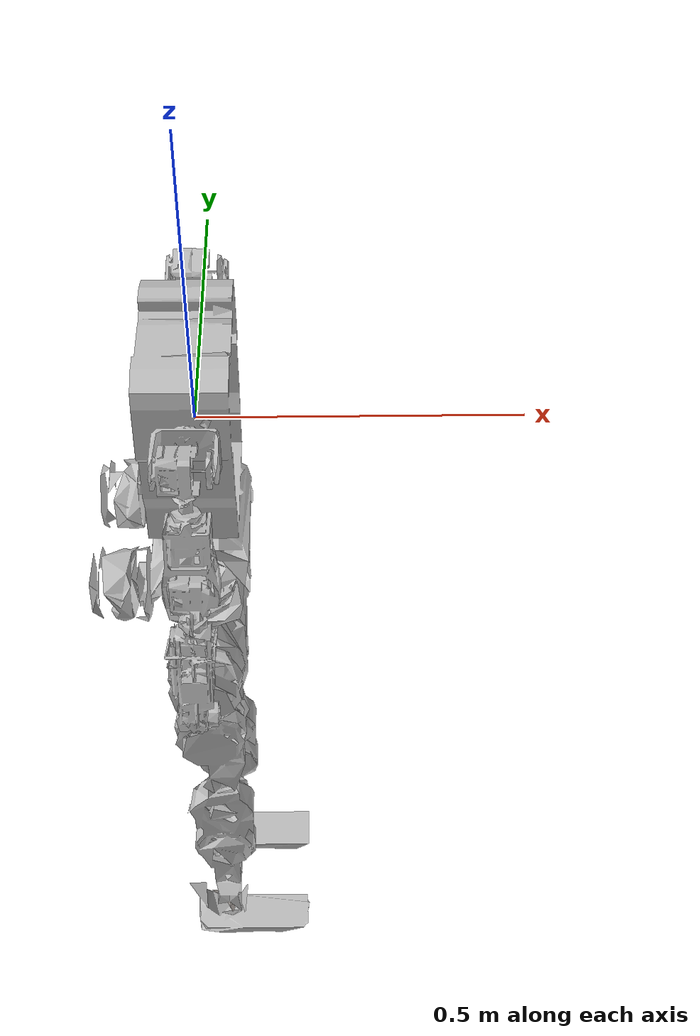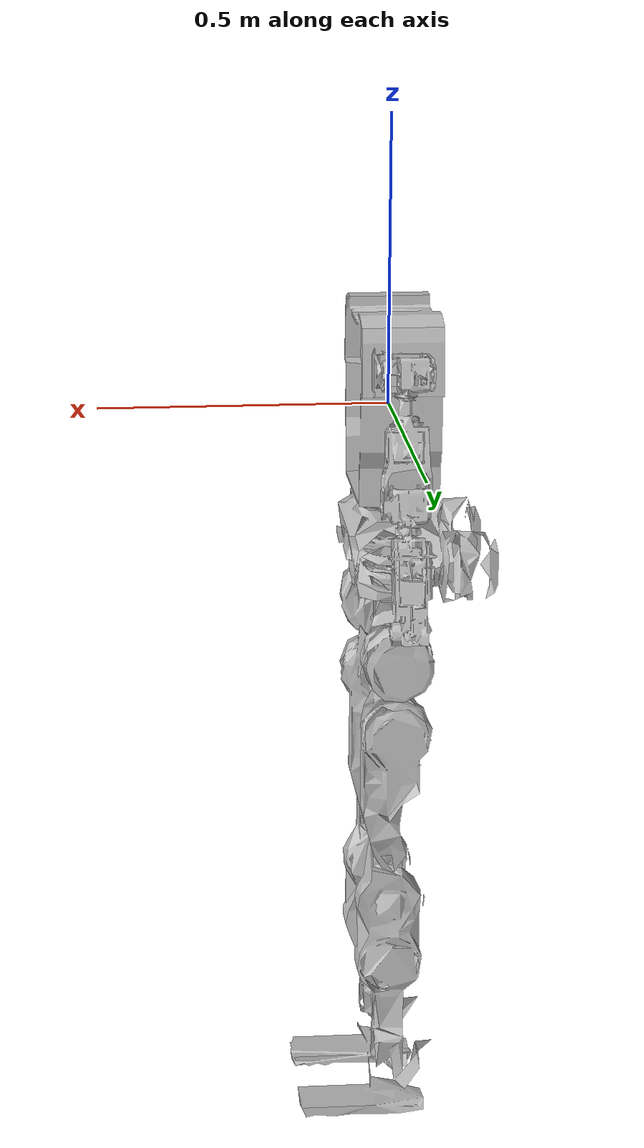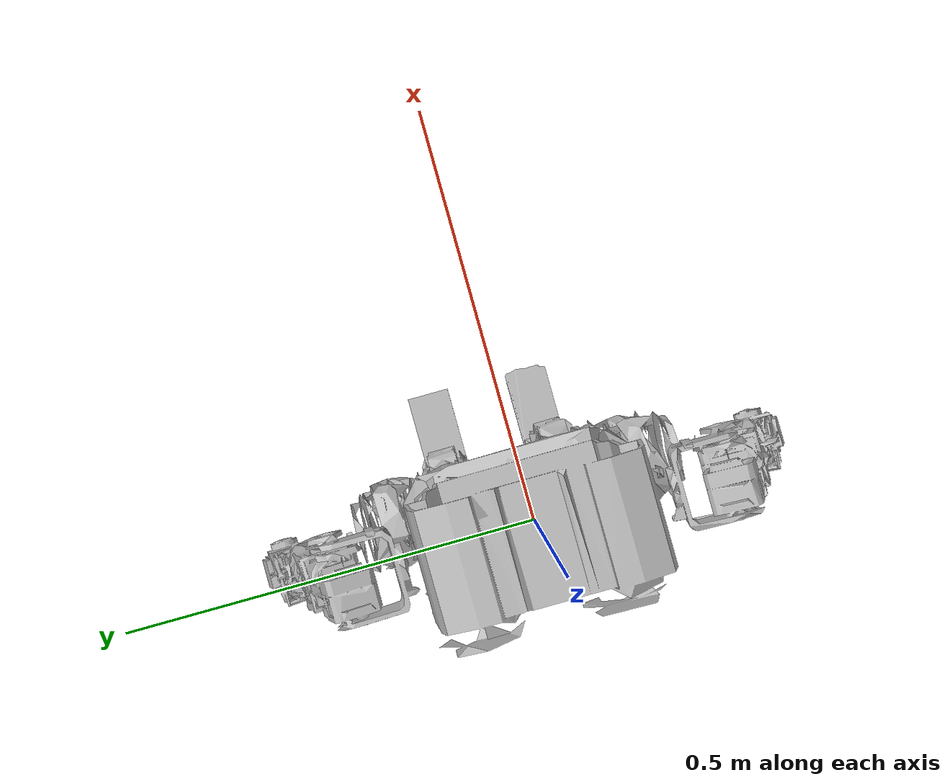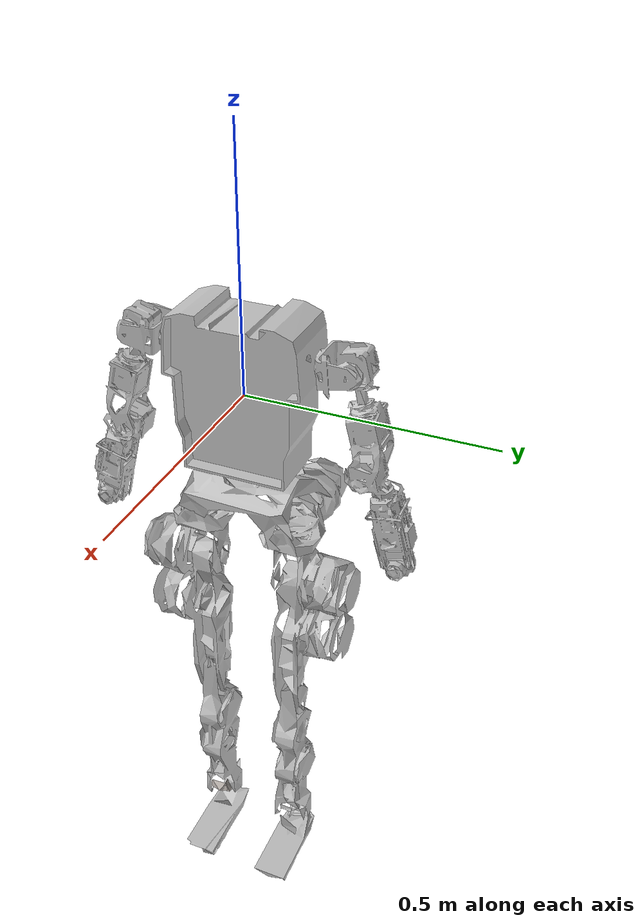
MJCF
<mujoco model="urdf_a1">
    <compiler angle="radian" />
    <size njmax="500" nconmax="100" />
    <asset>
        <mesh name="base_link" file="base_link.STL" />
        <mesh name="left_hip_roll_link" file="left_hip_roll_link.STL" />
        <mesh name="left_hip_yaw_link" file="left_hip_yaw_link.STL" />
        <mesh name="left_hip_pitch_link" file="left_hip_pitch_link.STL" />
        <mesh name="left_knee_pitch_link" file="left_knee_pitch_link.STL" />
        <mesh name="left_ankle_pitch_link" file="left_ankle_pitch_link.STL" />
        <mesh name="left_ankle_roll_link" file="left_ankle_roll_link.STL" />
        <mesh name="right_hip_roll_link" file="right_hip_roll_link.STL" />
        <mesh name="right_hip_yaw_link" file="right_hip_yaw_link.STL" />
        <mesh name="right_hip_pitch_link" file="right_hip_pitch_link.STL" />
        <mesh name="right_knee_pitch_link" file="right_knee_pitch_link.STL" />
        <mesh name="right_ankle_pitch_link" file="right_ankle_pitch_link.STL" />
        <mesh name="right_ankle_roll_link" file="right_ankle_roll_link.STL" />
        <mesh name="left_arm_link" file="left_arm_link.STL" />
        <mesh name="right_arm_link" file="right_arm_link.STL" />
    </asset>
    <worldbody>
        <body name="base_link" pos="0 0 0">
            <inertial pos="-0.039135 -0.0051259 -0.066441" quat="0.994943 0.0135453 0.0995215 0.000811931" mass="20.691" diaginertia="0.628224 0.526862 0.185256" />
            <joint name="floating_joint" type="free" />
            <geom type="mesh" rgba="0.75294 0.75294 0.75294 1" mesh="base_link" />
            <body name="left_hip_roll_link" pos="-0.122 0.1 -0.26527">
                <inertial pos="0.12259 0.00049277 -0.012041" quat="0.0232844 0.700126 0.00543002 0.713619" mass="1.4399" diaginertia="0.0031311 0.00254035 0.00202518" />
                <joint name="left_hip_roll_joint" pos="0 0 0" axis="1 0 0" limited="true" range="-0.61056 0.785" />
                <geom type="mesh" rgba="0.75294 0.75294 0.75294 1" mesh="left_hip_roll_link" />
                <body name="left_hip_yaw_link" pos="0.122 0 -0.00675">
                    <inertial pos="-4.4698e-05 0.061396 -0.12935" quat="0.914162 0.404652 -0.011946 0.0205352" mass="2.9112" diaginertia="0.00902742 0.00877099 0.00657162" />
                    <joint name="left_hip_yaw_joint" pos="0 0 0" axis="0 0 1" limited="true" range="-0.785 1.0467" />
                    <geom type="mesh" rgba="0.75294 0.75294 0.75294 1" mesh="left_hip_yaw_link" />
                    <body name="left_hip_pitch_link" pos="0 0 -0.13575">
                        <inertial pos="8.433e-05 0.031118 -0.1581" quat="0.99904 -0.0405334 -0.0137809 -0.00931636" mass="4.7973" diaginertia="0.0524469 0.0488529 0.0122104" />
                        <joint name="left_hip_pitch_joint" pos="0 0 0" axis="0 1 0" limited="true" range="-2.094 0.52333" />
                        <geom type="mesh" rgba="0.75294 0.75294 0.75294 1" mesh="left_hip_pitch_link" />
                        <body name="left_knee_pitch_link" pos="0 0 -0.386">
                            <inertial pos="0.00086403 0.00012643 -0.16602" quat="0.703989 0.0103567 0.00226749 0.710131" mass="3.9622" diaginertia="0.0525649 0.0513924 0.00496708" />
                            <joint name="left_knee_pitch_joint" pos="0 0 0" axis="0 1 0" limited="true" range="0.2618 2.356" />
                            <geom type="mesh" rgba="0.75294 0.75294 0.75294 1" mesh="left_knee_pitch_link" />
                            <body name="left_ankle_pitch_link" pos="0 0 -0.41">
                                <inertial pos="0.00091263 -0.00095459 3.983e-10" quat="0.510531 0.489243 -0.510531 0.489243" mass="0.16073" diaginertia="8.841e-05 5.2536e-05 4.9244e-05" />
                                <joint name="left_ankle_pitch_joint" pos="0 0 0" axis="0 1 0" limited="true" range="-1.0472 0.5236" />
                                <geom type="mesh" rgba="1 1 1 1" mesh="left_ankle_pitch_link" />
                                <body name="left_ankle_roll_link" pos="0 0 0">
                                    <inertial pos="0.0097609 -2.3757e-05 -0.046799" quat="0.390036 0.589501 0.590427 0.38956" mass="1.275" diaginertia="0.00523776 0.00472726 0.00144627" />
                                    <joint name="left_ankle_roll_joint" pos="0 0 0" axis="1 0 0" limited="true" range="-0.785 0.61056" />
                                    <geom type="mesh" rgba="0.75294 0.75294 0.75294 1" mesh="left_ankle_roll_link" />
                                </body>
                            </body>
                        </body>
                    </body>
                </body>
            </body>
            <body name="right_hip_roll_link" pos="-0.122 -0.1 -0.26527">
                <inertial pos="0.1226 -0.00049784 -0.012041" quat="-0.0232055 0.700118 -0.00533998 0.71363" mass="1.4399" diaginertia="0.00313109 0.00254035 0.00202521" />
                <joint name="right_hip_roll_joint" pos="0 0 0" axis="1 0 0" limited="true" range="-0.785 0.61056" />
                <geom type="mesh" rgba="0.75294 0.75294 0.75294 1" mesh="right_hip_roll_link" />
                <body name="right_hip_yaw_link" pos="0.122 0 -0.00675">
                    <inertial pos="-5.2742e-05 -0.061388 -0.12935" quat="0.404783 0.914169 -0.0180023 0.0110203" mass="2.9118" diaginertia="0.00902842 0.00877225 0.00657442" />
                    <joint name="right_hip_yaw_joint" pos="0 0 0" axis="0 0 1" limited="true" range="-1.0467 0.785" />
                    <geom type="mesh" rgba="0.75294 0.75294 0.75294 1" mesh="right_hip_yaw_link" />
                    <body name="right_hip_pitch_link" pos="0 0 -0.13575">
                        <inertial pos="8.5444e-05 -0.031118 -0.1581" quat="0.999039 0.0405405 -0.0137819 0.00938709" mass="4.7973" diaginertia="0.0524472 0.0488533 0.0122103" />
                        <joint name="right_hip_pitch_joint" pos="0 0 0" axis="0 1 0" limited="true" range="-2.094 0.52333" />
                        <geom type="mesh" rgba="0.75294 0.75294 0.75294 1" mesh="right_hip_pitch_link" />
                        <body name="right_knee_pitch_link" pos="0 0 -0.386">
                            <inertial pos="0.00086403 -0.00012643 -0.16602" quat="0.710131 0.00226748 0.0103567 0.703989" mass="3.9622" diaginertia="0.052565 0.0513926 0.00496709" />
                            <joint name="right_knee_pitch_joint" pos="0 0 0" axis="0 1 0" limited="true" range="0.2618 2.356" />
                            <geom type="mesh" rgba="0.75294 0.75294 0.75294 1" mesh="right_knee_pitch_link" />
                            <body name="right_ankle_pitch_link" pos="0 0 -0.41">
                                <inertial pos="0.00091266 0.00095458 7.8797e-10" quat="0.489243 0.510531 -0.489243 0.510531" mass="0.16073" diaginertia="8.841e-05 5.2536e-05 4.9244e-05" />
                                <joint name="right_ankle_pitch_joint" pos="0 0 0" axis="0 1 0" limited="true" range="-1.0472 0.5236" />
                                <geom type="mesh" rgba="0.68627 0.65882 0.63922 1" mesh="right_ankle_pitch_link" />
                                <body name="right_ankle_roll_link" pos="0 0 0">
                                    <inertial pos="0.0097608 2.3941e-05 -0.046799" quat="0.389561 0.590424 0.589503 0.390036" mass="1.275" diaginertia="0.00523777 0.00472726 0.00144626" />
                                    <joint name="right_ankle_roll_joint" pos="0 0 0" axis="1 0 0" limited="true" range="-0.785 0.61056" />
                                    <geom type="mesh" rgba="0.75294 0.75294 0.75294 1" mesh="right_ankle_roll_link" />
                                </body>
                            </body>
                        </body>
                    </body>
                </body>
            </body>
            <body name="left_arm_link" pos="0 0.15382 0.096957" quat="0.999048 0.0436192 0 0">
                <inertial pos="0.0011686 0.092788 -0.17962" quat="0.991448 0.0983609 -0.00704777 0.0854787" mass="3.3007" diaginertia="0.0668952 0.0665674 0.00282934" />
                <joint name="left_arm_joint" pos="0 0 0" axis="0 1 0" />
                <geom type="mesh" rgba="0.75294 0.75294 0.75294 1" mesh="left_arm_link" />
            </body>
            <body name="right_arm_link" pos="0 -0.15382 0.096957" quat="0.999048 -0.0436192 0 0">
                <inertial pos="0.0011686 -0.092787 -0.17962" quat="0.991451 -0.0983611 -0.00704414 -0.0854426" mass="3.3007" diaginertia="0.0668952 0.0665675 0.00282939" />
                <joint name="right_arm_joint" pos="0 0 0" axis="0 1 0" />
                <geom type="mesh" rgba="0.75294 0.75294 0.75294 1" mesh="right_arm_link" />
            </body>
        </body>
    </worldbody>
</mujoco>
